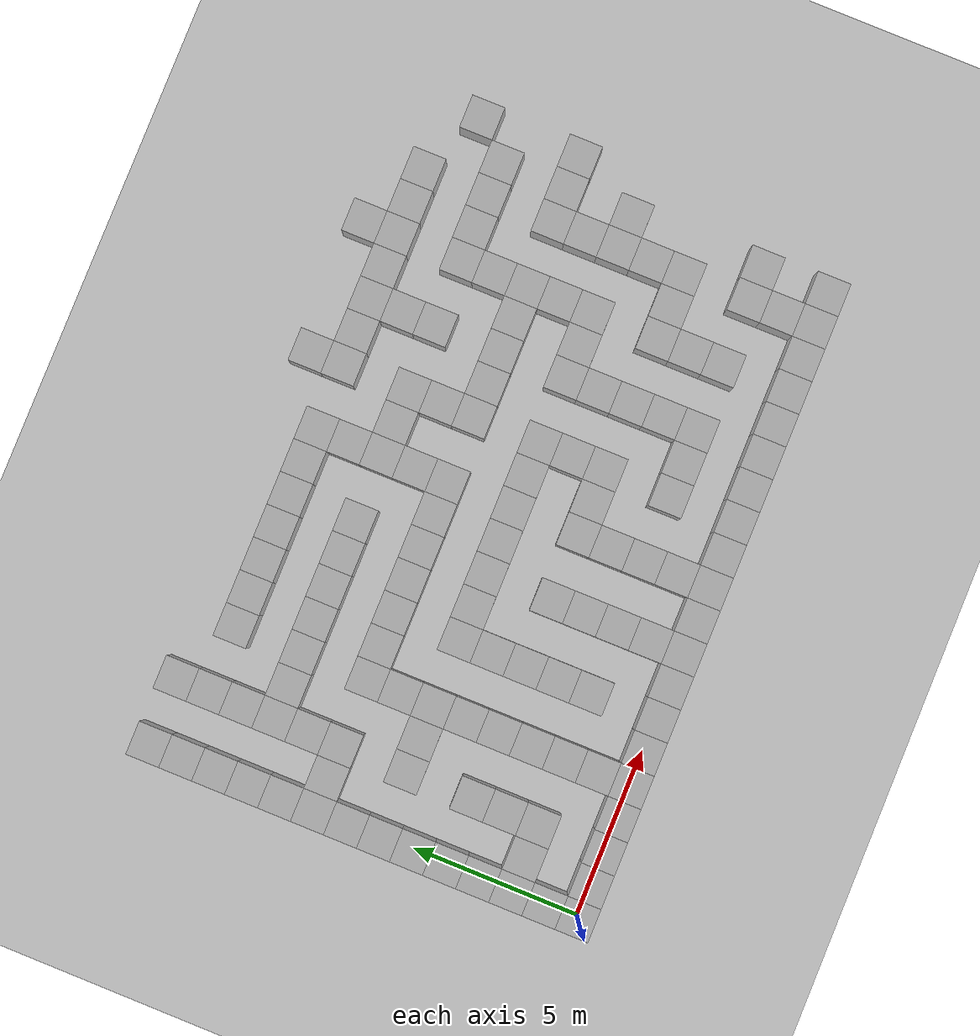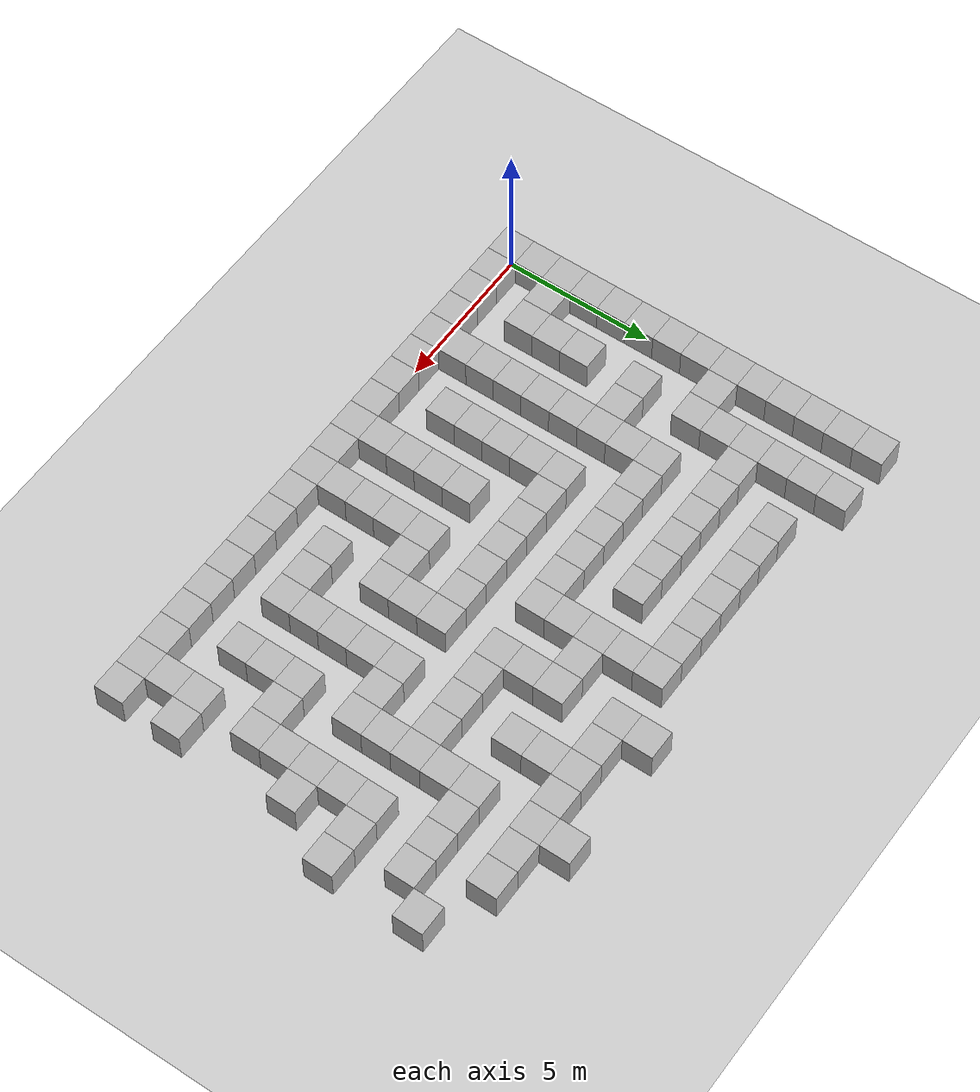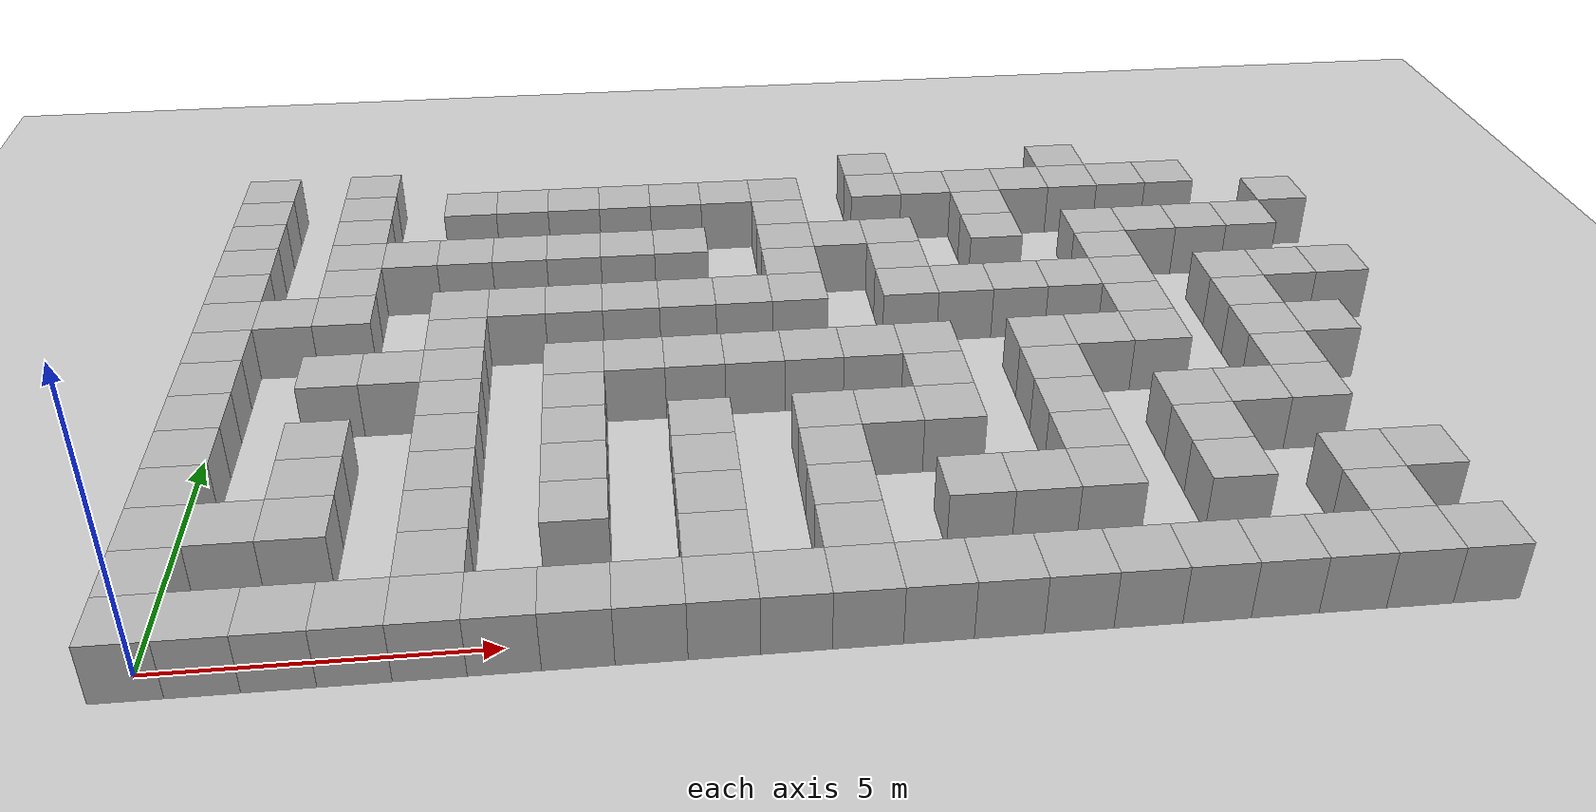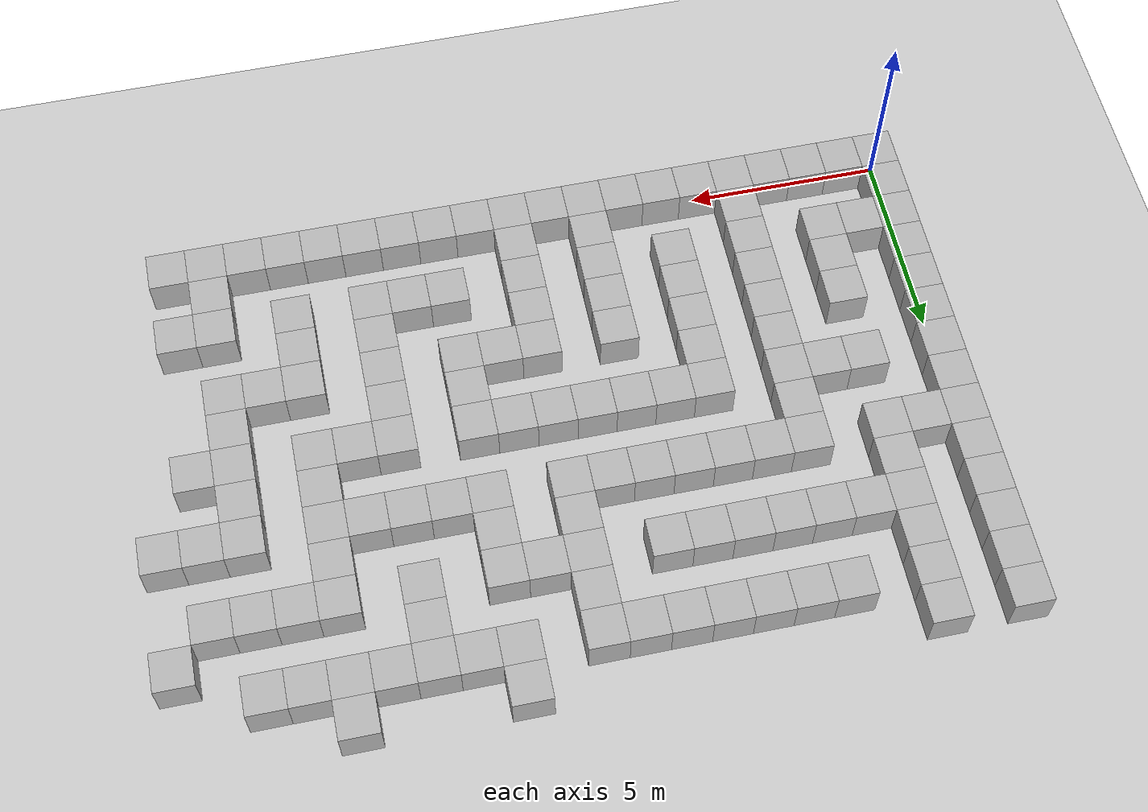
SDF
<sdf version="1.8">
 <world name="custom_maze">
  <model name="ground_plane">
   <static>1</static>
   <link name="link">
    <collision name="collision">
     <geometry><plane><normal>0 0 1</normal><size>100 100</size></plane></geometry>
    </collision>
    <visual name="visual">
     <geometry><plane><normal>0 0 1</normal><size>100 100</size></plane></geometry>
     <material>
      <ambient>0.8 0.8 0.8 1</ambient>
      <diffuse>0.8 0.8 0.8 1</diffuse>
      <specular>0.8 0.8 0.8 1</specular>
     </material>
     <plugin name="__default__" filename="__default__"/>
    </visual>
   </link>
   <plugin name="__default__" filename="__default__"/>
  </model>
  <model name="border"><pose>0 0 1 0 0 0</pose><static>true</static></model>
  <model name="obstacles">
   <pose>0 0 0.5 0 0 0</pose>
   <static>true</static>
   <link name="wall3">
    <pose>0 5 0 0 0 0</pose>
    <static>true</static>
    <collision name="wall3_collision"><geometry><box><size>1 1 1</size></box></geometry></collision>
    <visual name="wall3_visual"><geometry><box><size>1 1 1</size></box></geometry></visual>
   </link>
   <link name="wall20">
    <pose>18 7 0 0 0 0</pose>
    <static>true</static>
    <collision name="wall20_collision"><geometry><box><size>1 1 1</size></box></geometry></collision>
    <visual name="wall20_visual"><geometry><box><size>1 1 1</size></box></geometry></visual>
   </link>
   <link name="wall25">
    <pose>11 4 0 0 0 0</pose>
    <static>true</static>
    <collision name="wall25_collision"><geometry><box><size>1 1 1</size></box></geometry></collision>
    <visual name="wall25_visual"><geometry><box><size>1 1 1</size></box></geometry></visual>
   </link>
   <link name="wall26">
    <pose>10 8 0 0 0 0</pose>
    <static>true</static>
    <collision name="wall26_collision"><geometry><box><size>1 1 1</size></box></geometry></collision>
    <visual name="wall26_visual"><geometry><box><size>1 1 1</size></box></geometry></visual>
   </link>
   <link name="wall49">
    <pose>14 4 0 0 0 0</pose>
    <static>true</static>
    <collision name="wall49_collision"><geometry><box><size>1 1 1</size></box></geometry></collision>
    <visual name="wall49_visual"><geometry><box><size>1 1 1</size></box></geometry></visual>
   </link>
   <link name="wall53">
    <pose>6 5 0 0 0 0</pose>
    <static>true</static>
    <collision name="wall53_collision"><geometry><box><size>1 1 1</size></box></geometry></collision>
    <visual name="wall53_visual"><geometry><box><size>1 1 1</size></box></geometry></visual>
   </link>
   <link name="wall55">
    <pose>10 11 0 0 0 0</pose>
    <static>true</static>
    <collision name="wall55_collision"><geometry><box><size>1 1 1</size></box></geometry></collision>
    <visual name="wall55_visual"><geometry><box><size>1 1 1</size></box></geometry></visual>
   </link>
   <link name="wall75">
    <pose>13 12 0 0 0 0</pose>
    <static>true</static>
    <collision name="wall75_collision"><geometry><box><size>1 1 1</size></box></geometry></collision>
    <visual name="wall75_visual"><geometry><box><size>1 1 1</size></box></geometry></visual>
   </link>
   <link name="wall90">
    <pose>13 2 0 0 0 0</pose>
    <static>true</static>
    <collision name="wall90_collision"><geometry><box><size>1 1 1</size></box></geometry></collision>
    <visual name="wall90_visual"><geometry><box><size>1 1 1</size></box></geometry></visual>
   </link>
   <link name="wall93">
    <pose>16 7 0 0 0 0</pose>
    <static>true</static>
    <collision name="wall93_collision"><geometry><box><size>1 1 1</size></box></geometry></collision>
    <visual name="wall93_visual"><geometry><box><size>1 1 1</size></box></geometry></visual>
   </link>
   <link name="wall95">
    <pose>8 8 0 0 0 0</pose>
    <static>true</static>
    <collision name="wall95_collision"><geometry><box><size>1 1 1</size></box></geometry></collision>
    <visual name="wall95_visual"><geometry><box><size>1 1 1</size></box></geometry></visual>
   </link>
   <link name="wall96">
    <pose>0 4 0 0 0 0</pose>
    <static>true</static>
    <collision name="wall96_collision"><geometry><box><size>1 1 1</size></box></geometry></collision>
    <visual name="wall96_visual"><geometry><box><size>1 1 1</size></box></geometry></visual>
   </link>
   <link name="wall101">
    <pose>4 10 0 0 0 0</pose>
    <static>true</static>
    <collision name="wall101_collision"><geometry><box><size>1 1 1</size></box></geometry></collision>
    <visual name="wall101_visual"><geometry><box><size>1 1 1</size></box></geometry></visual>
   </link>
   <link name="wall113">
    <pose>18 6 0 0 0 0</pose>
    <static>true</static>
    <collision name="wall113_collision"><geometry><box><size>1 1 1</size></box></geometry></collision>
    <visual name="wall113_visual"><geometry><box><size>1 1 1</size></box></geometry></visual>
   </link>
   <link name="wall116">
    <pose>12 4 0 0 0 0</pose>
    <static>true</static>
    <collision name="wall116_collision"><geometry><box><size>1 1 1</size></box></geometry></collision>
    <visual name="wall116_visual"><geometry><box><size>1 1 1</size></box></geometry></visual>
   </link>
   <link name="wall117">
    <pose>4 0 0 0 0 0</pose>
    <static>true</static>
    <collision name="wall117_collision"><geometry><box><size>1 1 1</size></box></geometry></collision>
    <visual name="wall117_visual"><geometry><box><size>1 1 1</size></box></geometry></visual>
   </link>
   <link name="wall120">
    <pose>7 10 0 0 0 0</pose>
    <static>true</static>
    <collision name="wall120_collision"><geometry><box><size>1 1 1</size></box></geometry></collision>
    <visual name="wall120_visual"><geometry><box><size>1 1 1</size></box></geometry></visual>
   </link>
   <link name="wall121">
    <pose>0 7 0 0 0 0</pose>
    <static>true</static>
    <collision name="wall121_collision"><geometry><box><size>1 1 1</size></box></geometry></collision>
    <visual name="wall121_visual"><geometry><box><size>1 1 1</size></box></geometry></visual>
   </link>
   <link name="wall135">
    <pose>14 3 0 0 0 0</pose>
    <static>true</static>
    <collision name="wall135_collision"><geometry><box><size>1 1 1</size></box></geometry></collision>
    <visual name="wall135_visual"><geometry><box><size>1 1 1</size></box></geometry></visual>
   </link>
   <link name="wall139">
    <pose>7 0 0 0 0 0</pose>
    <static>true</static>
    <collision name="wall139_collision"><geometry><box><size>1 1 1</size></box></geometry></collision>
    <visual name="wall139_visual"><geometry><box><size>1 1 1</size></box></geometry></visual>
   </link>
   <link name="wall142">
    <pose>10 10 0 0 0 0</pose>
    <static>true</static>
    <collision name="wall142_collision"><geometry><box><size>1 1 1</size></box></geometry></collision>
    <visual name="wall142_visual"><geometry><box><size>1 1 1</size></box></geometry></visual>
   </link>
   <link name="wall143">
    <pose>2 6 0 0 0 0</pose>
    <static>true</static>
    <collision name="wall143_collision"><geometry><box><size>1 1 1</size></box></geometry></collision>
    <visual name="wall143_visual"><geometry><box><size>1 1 1</size></box></geometry></visual>
   </link>
   <link name="wall159">
    <pose>10 0 0 0 0 0</pose>
    <static>true</static>
    <collision name="wall159_collision"><geometry><box><size>1 1 1</size></box></geometry></collision>
    <visual name="wall159_visual"><geometry><box><size>1 1 1</size></box></geometry></visual>
   </link>
   <link name="wall162">
    <pose>14 6 0 0 0 0</pose>
    <static>true</static>
    <collision name="wall162_collision"><geometry><box><size>1 1 1</size></box></geometry></collision>
    <visual name="wall162_visual"><geometry><box><size>1 1 1</size></box></geometry></visual>
   </link>
   <link name="wall169">
    <pose>2 9 0 0 0 0</pose>
    <static>true</static>
    <collision name="wall169_collision"><geometry><box><size>1 1 1</size></box></geometry></collision>
    <visual name="wall169_visual"><geometry><box><size>1 1 1</size></box></geometry></visual>
   </link>
   <link name="wall182">
    <pose>16 6 0 0 0 0</pose>
    <static>true</static>
    <collision name="wall182_collision"><geometry><box><size>1 1 1</size></box></geometry></collision>
    <visual name="wall182_visual"><geometry><box><size>1 1 1</size></box></geometry></visual>
   </link>
   <link name="wall186">
    <pose>12 13 0 0 0 0</pose>
    <static>true</static>
    <collision name="wall186_collision"><geometry><box><size>1 1 1</size></box></geometry></collision>
    <visual name="wall186_visual"><geometry><box><size>1 1 1</size></box></geometry></visual>
   </link>
   <link name="wall204">
    <pose>16 9 0 0 0 0</pose>
    <static>true</static>
    <collision name="wall204_collision"><geometry><box><size>1 1 1</size></box></geometry></collision>
    <visual name="wall204_visual"><geometry><box><size>1 1 1</size></box></geometry></visual>
   </link>
   <link name="wall206">
    <pose>8 10 0 0 0 0</pose>
    <static>true</static>
    <collision name="wall206_collision"><geometry><box><size>1 1 1</size></box></geometry></collision>
    <visual name="wall206_visual"><geometry><box><size>1 1 1</size></box></geometry></visual>
   </link>
   <link name="wall207">
    <pose>0 6 0 0 0 0</pose>
    <static>true</static>
    <collision name="wall207_collision"><geometry><box><size>1 1 1</size></box></geometry></collision>
    <visual name="wall207_visual"><geometry><box><size>1 1 1</size></box></geometry></visual>
   </link>
   <link name="wall210">
    <pose>4 12 0 0 0 0</pose>
    <static>true</static>
    <collision name="wall210_collision"><geometry><box><size>1 1 1</size></box></geometry></collision>
    <visual name="wall210_visual"><geometry><box><size>1 1 1</size></box></geometry></visual>
   </link>
   <link name="wall221">
    <pose>18 8 0 0 0 0</pose>
    <static>true</static>
    <collision name="wall221_collision"><geometry><box><size>1 1 1</size></box></geometry></collision>
    <visual name="wall221_visual"><geometry><box><size>1 1 1</size></box></geometry></visual>
   </link>
   <link name="wall223">
    <pose>8 0 0 0 0 0</pose>
    <static>true</static>
    <collision name="wall223_collision"><geometry><box><size>1 1 1</size></box></geometry></collision>
    <visual name="wall223_visual"><geometry><box><size>1 1 1</size></box></geometry></visual>
   </link>
   <link name="wall225">
    <pose>4 2 0 0 0 0</pose>
    <static>true</static>
    <collision name="wall225_collision"><geometry><box><size>1 1 1</size></box></geometry></collision>
    <visual name="wall225_visual"><geometry><box><size>1 1 1</size></box></geometry></visual>
   </link>
   <link name="wall226">
    <pose>3 6 0 0 0 0</pose>
    <static>true</static>
    <collision name="wall226_collision"><geometry><box><size>1 1 1</size></box></geometry></collision>
    <visual name="wall226_visual"><geometry><box><size>1 1 1</size></box></geometry></visual>
   </link>
   <link name="wall231">
    <pose>7 12 0 0 0 0</pose>
    <static>true</static>
    <collision name="wall231_collision"><geometry><box><size>1 1 1</size></box></geometry></collision>
    <visual name="wall231_visual"><geometry><box><size>1 1 1</size></box></geometry></visual>
   </link>
   <link name="wall233">
    <pose>0 9 0 0 0 0</pose>
    <static>true</static>
    <collision name="wall233_collision"><geometry><box><size>1 1 1</size></box></geometry></collision>
    <visual name="wall233_visual"><geometry><box><size>1 1 1</size></box></geometry></visual>
   </link>
   <link name="wall245">
    <pose>14 5 0 0 0 0</pose>
    <static>true</static>
    <collision name="wall245_collision"><geometry><box><size>1 1 1</size></box></geometry></collision>
    <visual name="wall245_visual"><geometry><box><size>1 1 1</size></box></geometry></visual>
   </link>
   <link name="wall246">
    <pose>15 6 0 0 0 0</pose>
    <static>true</static>
    <collision name="wall246_collision"><geometry><box><size>1 1 1</size></box></geometry></collision>
    <visual name="wall246_visual"><geometry><box><size>1 1 1</size></box></geometry></visual>
   </link>
   <link name="wall250">
    <pose>10 12 0 0 0 0</pose>
    <static>true</static>
    <collision name="wall250_collision"><geometry><box><size>1 1 1</size></box></geometry></collision>
    <visual name="wall250_visual"><geometry><box><size>1 1 1</size></box></geometry></visual>
   </link>
   <link name="wall251">
    <pose>2 8 0 0 0 0</pose>
    <static>true</static>
    <collision name="wall251_collision"><geometry><box><size>1 1 1</size></box></geometry></collision>
    <visual name="wall251_visual"><geometry><box><size>1 1 1</size></box></geometry></visual>
   </link>
   <link name="wall266">
    <pose>10 2 0 0 0 0</pose>
    <static>true</static>
    <collision name="wall266_collision"><geometry><box><size>1 1 1</size></box></geometry></collision>
    <visual name="wall266_visual"><geometry><box><size>1 1 1</size></box></geometry></visual>
   </link>
   <link name="wall271">
    <pose>5 8 0 0 0 0</pose>
    <static>true</static>
    <collision name="wall271_collision"><geometry><box><size>1 1 1</size></box></geometry></collision>
    <visual name="wall271_visual"><geometry><box><size>1 1 1</size></box></geometry></visual>
   </link>
   <link name="wall279">
    <pose>2 11 0 0 0 0</pose>
    <static>true</static>
    <collision name="wall279_collision"><geometry><box><size>1 1 1</size></box></geometry></collision>
    <visual name="wall279_visual"><geometry><box><size>1 1 1</size></box></geometry></visual>
   </link>
   <link name="wall289">
    <pose>16 8 0 0 0 0</pose>
    <static>true</static>
    <collision name="wall289_collision"><geometry><box><size>1 1 1</size></box></geometry></collision>
    <visual name="wall289_visual"><geometry><box><size>1 1 1</size></box></geometry></visual>
   </link>
   <link name="wall309">
    <pose>19 8 0 0 0 0</pose>
    <static>true</static>
    <collision name="wall309_collision"><geometry><box><size>1 1 1</size></box></geometry></collision>
    <visual name="wall309_visual"><geometry><box><size>1 1 1</size></box></geometry></visual>
   </link>
   <link name="wall312">
    <pose>12 5 0 0 0 0</pose>
    <static>true</static>
    <collision name="wall312_collision"><geometry><box><size>1 1 1</size></box></geometry></collision>
    <visual name="wall312_visual"><geometry><box><size>1 1 1</size></box></geometry></visual>
   </link>
   <link name="wall313">
    <pose>4 1 0 0 0 0</pose>
    <static>true</static>
    <collision name="wall313_collision"><geometry><box><size>1 1 1</size></box></geometry></collision>
    <visual name="wall313_visual"><geometry><box><size>1 1 1</size></box></geometry></visual>
   </link>
   <link name="wall317">
    <pose>8 12 0 0 0 0</pose>
    <static>true</static>
    <collision name="wall317_collision"><geometry><box><size>1 1 1</size></box></geometry></collision>
    <visual name="wall317_visual"><geometry><box><size>1 1 1</size></box></geometry></visual>
   </link>
   <link name="wall318">
    <pose>0 8 0 0 0 0</pose>
    <static>true</static>
    <collision name="wall318_collision"><geometry><box><size>1 1 1</size></box></geometry></collision>
    <visual name="wall318_visual"><geometry><box><size>1 1 1</size></box></geometry></visual>
   </link>
   <link name="wall333">
    <pose>18 10 0 0 0 0</pose>
    <static>true</static>
    <collision name="wall333_collision"><geometry><box><size>1 1 1</size></box></geometry></collision>
    <visual name="wall333_visual"><geometry><box><size>1 1 1</size></box></geometry></visual>
   </link>
   <link name="wall334">
    <pose>8 2 0 0 0 0</pose>
    <static>true</static>
    <collision name="wall334_collision"><geometry><box><size>1 1 1</size></box></geometry></collision>
    <visual name="wall334_visual"><geometry><box><size>1 1 1</size></box></geometry></visual>
   </link>
   <link name="wall349">
    <pose>18 0 0 0 0 0</pose>
    <static>true</static>
    <collision name="wall349_collision"><geometry><box><size>1 1 1</size></box></geometry></collision>
    <visual name="wall349_visual"><geometry><box><size>1 1 1</size></box></geometry></visual>
   </link>
   <link name="wall352">
    <pose>10 1 0 0 0 0</pose>
    <static>true</static>
    <collision name="wall352_collision"><geometry><box><size>1 1 1</size></box></geometry></collision>
    <visual name="wall352_visual"><geometry><box><size>1 1 1</size></box></geometry></visual>
   </link>
   <link name="wall357">
    <pose>6 8 0 0 0 0</pose>
    <static>true</static>
    <collision name="wall357_collision"><geometry><box><size>1 1 1</size></box></geometry></collision>
    <visual name="wall357_visual"><geometry><box><size>1 1 1</size></box></geometry></visual>
   </link>
   <link name="wall362">
    <pose>2 10 0 0 0 0</pose>
    <static>true</static>
    <collision name="wall362_collision"><geometry><box><size>1 1 1</size></box></geometry></collision>
    <visual name="wall362_visual"><geometry><box><size>1 1 1</size></box></geometry></visual>
   </link>
   <link name="wall374">
    <pose>10 4 0 0 0 0</pose>
    <static>true</static>
    <collision name="wall374_collision"><geometry><box><size>1 1 1</size></box></geometry></collision>
    <visual name="wall374_visual"><geometry><box><size>1 1 1</size></box></geometry></visual>
   </link>
   <link name="wall375">
    <pose>2 0 0 0 0 0</pose>
    <static>true</static>
    <collision name="wall375_collision"><geometry><box><size>1 1 1</size></box></geometry></collision>
    <visual name="wall375_visual"><geometry><box><size>1 1 1</size></box></geometry></visual>
   </link>
   <link name="wall380">
    <pose>5 10 0 0 0 0</pose>
    <static>true</static>
    <collision name="wall380_collision"><geometry><box><size>1 1 1</size></box></geometry></collision>
    <visual name="wall380_visual"><geometry><box><size>1 1 1</size></box></geometry></visual>
   </link>
   <link name="wall391">
    <pose>20 8 0 0 0 0</pose>
    <static>true</static>
    <collision name="wall391_collision"><geometry><box><size>1 1 1</size></box></geometry></collision>
    <visual name="wall391_visual"><geometry><box><size>1 1 1</size></box></geometry></visual>
   </link>
   <link name="wall396">
    <pose>16 10 0 0 0 0</pose>
    <static>true</static>
    <collision name="wall396_collision"><geometry><box><size>1 1 1</size></box></geometry></collision>
    <visual name="wall396_visual"><geometry><box><size>1 1 1</size></box></geometry></visual>
   </link>
   <link name="wall397">
    <pose>5 0 0 0 0 0</pose>
    <static>true</static>
    <collision name="wall397_collision"><geometry><box><size>1 1 1</size></box></geometry></collision>
    <visual name="wall397_visual"><geometry><box><size>1 1 1</size></box></geometry></visual>
   </link>
   <link name="wall415">
    <pose>16 0 0 0 0 0</pose>
    <static>true</static>
    <collision name="wall415_collision"><geometry><box><size>1 1 1</size></box></geometry></collision>
    <visual name="wall415_visual"><geometry><box><size>1 1 1</size></box></geometry></visual>
   </link>
   <link name="wall419">
    <pose>8 1 0 0 0 0</pose>
    <static>true</static>
    <collision name="wall419_collision"><geometry><box><size>1 1 1</size></box></geometry></collision>
    <visual name="wall419_visual"><geometry><box><size>1 1 1</size></box></geometry></visual>
   </link>
   <link name="wall421">
    <pose>19 10 0 0 0 0</pose>
    <static>true</static>
    <collision name="wall421_collision"><geometry><box><size>1 1 1</size></box></geometry></collision>
    <visual name="wall421_visual"><geometry><box><size>1 1 1</size></box></geometry></visual>
   </link>
   <link name="wall422">
    <pose>11 6 0 0 0 0</pose>
    <static>true</static>
    <collision name="wall422_collision"><geometry><box><size>1 1 1</size></box></geometry></collision>
    <visual name="wall422_visual"><geometry><box><size>1 1 1</size></box></geometry></visual>
   </link>
   <link name="wall425">
    <pose>20 11 0 0 0 0</pose>
    <static>true</static>
    <collision name="wall425_collision"><geometry><box><size>1 1 1</size></box></geometry></collision>
    <visual name="wall425_visual"><geometry><box><size>1 1 1</size></box></geometry></visual>
   </link>
   <link name="wall427">
    <pose>4 3 0 0 0 0</pose>
    <static>true</static>
    <collision name="wall427_collision"><geometry><box><size>1 1 1</size></box></geometry></collision>
    <visual name="wall427_visual"><geometry><box><size>1 1 1</size></box></geometry></visual>
   </link>
   <link name="wall434">
    <pose>0 10 0 0 0 0</pose>
    <static>true</static>
    <collision name="wall434_collision"><geometry><box><size>1 1 1</size></box></geometry></collision>
    <visual name="wall434_visual"><geometry><box><size>1 1 1</size></box></geometry></visual>
   </link>
   <link name="wall442">
    <pose>19 0 0 0 0 0</pose>
    <static>true</static>
    <collision name="wall442_collision"><geometry><box><size>1 1 1</size></box></geometry></collision>
    <visual name="wall442_visual"><geometry><box><size>1 1 1</size></box></geometry></visual>
   </link>
   <link name="wall449">
    <pose>18 12 0 0 0 0</pose>
    <static>true</static>
    <collision name="wall449_collision"><geometry><box><size>1 1 1</size></box></geometry></collision>
    <visual name="wall449_visual"><geometry><box><size>1 1 1</size></box></geometry></visual>
   </link>
   <link name="wall450">
    <pose>8 4 0 0 0 0</pose>
    <static>true</static>
    <collision name="wall450_collision"><geometry><box><size>1 1 1</size></box></geometry></collision>
    <visual name="wall450_visual"><geometry><box><size>1 1 1</size></box></geometry></visual>
   </link>
   <link name="wall451">
    <static>true</static>
    <collision name="wall451_collision"><geometry><box><size>1 1 1</size></box></geometry></collision>
    <visual name="wall451_visual"><geometry><box><size>1 1 1</size></box></geometry></visual>
   </link>
   <link name="wall453">
    <pose>3 10 0 0 0 0</pose>
    <static>true</static>
    <collision name="wall453_collision"><geometry><box><size>1 1 1</size></box></geometry></collision>
    <visual name="wall453_visual"><geometry><box><size>1 1 1</size></box></geometry></visual>
   </link>
   <link name="wall465">
    <pose>18 2 0 0 0 0</pose>
    <static>true</static>
    <collision name="wall465_collision"><geometry><box><size>1 1 1</size></box></geometry></collision>
    <visual name="wall465_visual"><geometry><box><size>1 1 1</size></box></geometry></visual>
   </link>
   <link name="wall467">
    <pose>10 3 0 0 0 0</pose>
    <static>true</static>
    <collision name="wall467_collision"><geometry><box><size>1 1 1</size></box></geometry></collision>
    <visual name="wall467_visual"><geometry><box><size>1 1 1</size></box></geometry></visual>
   </link>
   <link name="wall469">
    <pose>3 0 0 0 0 0</pose>
    <static>true</static>
    <collision name="wall469_collision"><geometry><box><size>1 1 1</size></box></geometry></collision>
    <visual name="wall469_visual"><geometry><box><size>1 1 1</size></box></geometry></visual>
   </link>
   <link name="wall474">
    <pose>6 10 0 0 0 0</pose>
    <static>true</static>
    <collision name="wall474_collision"><geometry><box><size>1 1 1</size></box></geometry></collision>
    <visual name="wall474_visual"><geometry><box><size>1 1 1</size></box></geometry></visual>
   </link>
   <link name="wall478">
    <pose>2 12 0 0 0 0</pose>
    <static>true</static>
    <collision name="wall478_collision"><geometry><box><size>1 1 1</size></box></geometry></collision>
    <visual name="wall478_visual"><geometry><box><size>1 1 1</size></box></geometry></visual>
   </link>
   <link name="wall488">
    <pose>17 10 0 0 0 0</pose>
    <static>true</static>
    <collision name="wall488_collision"><geometry><box><size>1 1 1</size></box></geometry></collision>
    <visual name="wall488_visual"><geometry><box><size>1 1 1</size></box></geometry></visual>
   </link>
   <link name="wall490">
    <pose>9 6 0 0 0 0</pose>
    <static>true</static>
    <collision name="wall490_collision"><geometry><box><size>1 1 1</size></box></geometry></collision>
    <visual name="wall490_visual"><geometry><box><size>1 1 1</size></box></geometry></visual>
   </link>
   <link name="wall492">
    <pose>6 0 0 0 0 0</pose>
    <static>true</static>
    <collision name="wall492_collision"><geometry><box><size>1 1 1</size></box></geometry></collision>
    <visual name="wall492_visual"><geometry><box><size>1 1 1</size></box></geometry></visual>
   </link>
   <link name="wall495">
    <pose>10 6 0 0 0 0</pose>
    <static>true</static>
    <collision name="wall495_collision"><geometry><box><size>1 1 1</size></box></geometry></collision>
    <visual name="wall495_visual"><geometry><box><size>1 1 1</size></box></geometry></visual>
   </link>
   <link name="wall496">
    <pose>2 2 0 0 0 0</pose>
    <static>true</static>
    <collision name="wall496_collision"><geometry><box><size>1 1 1</size></box></geometry></collision>
    <visual name="wall496_visual"><geometry><box><size>1 1 1</size></box></geometry></visual>
   </link>
   <link name="wall501">
    <pose>5 12 0 0 0 0</pose>
    <static>true</static>
    <collision name="wall501_collision"><geometry><box><size>1 1 1</size></box></geometry></collision>
    <visual name="wall501_visual"><geometry><box><size>1 1 1</size></box></geometry></visual>
   </link>
   <link name="wall510">
    <pose>17 0 0 0 0 0</pose>
    <static>true</static>
    <collision name="wall510_collision"><geometry><box><size>1 1 1</size></box></geometry></collision>
    <visual name="wall510_visual"><geometry><box><size>1 1 1</size></box></geometry></visual>
   </link>
   <link name="wall516">
    <pose>12 6 0 0 0 0</pose>
    <static>true</static>
    <collision name="wall516_collision"><geometry><box><size>1 1 1</size></box></geometry></collision>
    <visual name="wall516_visual"><geometry><box><size>1 1 1</size></box></geometry></visual>
   </link>
   <link name="wall520">
    <pose>16 12 0 0 0 0</pose>
    <static>true</static>
    <collision name="wall520_collision"><geometry><box><size>1 1 1</size></box></geometry></collision>
    <visual name="wall520_visual"><geometry><box><size>1 1 1</size></box></geometry></visual>
   </link>
   <link name="wall534">
    <pose>16 2 0 0 0 0</pose>
    <static>true</static>
    <collision name="wall534_collision"><geometry><box><size>1 1 1</size></box></geometry></collision>
    <visual name="wall534_visual"><geometry><box><size>1 1 1</size></box></geometry></visual>
   </link>
   <link name="wall538">
    <pose>8 3 0 0 0 0</pose>
    <static>true</static>
    <collision name="wall538_collision"><geometry><box><size>1 1 1</size></box></geometry></collision>
    <visual name="wall538_visual"><geometry><box><size>1 1 1</size></box></geometry></visual>
   </link>
   <link name="wall543">
    <pose>12 9 0 0 0 0</pose>
    <static>true</static>
    <collision name="wall543_collision"><geometry><box><size>1 1 1</size></box></geometry></collision>
    <visual name="wall543_visual"><geometry><box><size>1 1 1</size></box></geometry></visual>
   </link>
   <link name="wall544">
    <pose>4 5 0 0 0 0</pose>
    <static>true</static>
    <collision name="wall544_collision"><geometry><box><size>1 1 1</size></box></geometry></collision>
    <visual name="wall544_visual"><geometry><box><size>1 1 1</size></box></geometry></visual>
   </link>
   <link name="wall551">
    <pose>0 12 0 0 0 0</pose>
    <static>true</static>
    <collision name="wall551_collision"><geometry><box><size>1 1 1</size></box></geometry></collision>
    <visual name="wall551_visual"><geometry><box><size>1 1 1</size></box></geometry></visual>
   </link>
   <link name="wall554">
    <pose>18 1 0 0 0 0</pose>
    <static>true</static>
    <collision name="wall554_collision"><geometry><box><size>1 1 1</size></box></geometry></collision>
    <visual name="wall554_visual"><geometry><box><size>1 1 1</size></box></geometry></visual>
   </link>
   <link name="wall558">
    <pose>19 2 0 0 0 0</pose>
    <static>true</static>
    <collision name="wall558_collision"><geometry><box><size>1 1 1</size></box></geometry></collision>
    <visual name="wall558_visual"><geometry><box><size>1 1 1</size></box></geometry></visual>
   </link>
   <link name="wall564">
    <pose>14 8 0 0 0 0</pose>
    <static>true</static>
    <collision name="wall564_collision"><geometry><box><size>1 1 1</size></box></geometry></collision>
    <visual name="wall564_visual"><geometry><box><size>1 1 1</size></box></geometry></visual>
   </link>
   <link name="wall568">
    <pose>0 2 0 0 0 0</pose>
    <static>true</static>
    <collision name="wall568_collision"><geometry><box><size>1 1 1</size></box></geometry></collision>
    <visual name="wall568_visual"><geometry><box><size>1 1 1</size></box></geometry></visual>
   </link>
   <link name="wall579">
    <pose>18 4 0 0 0 0</pose>
    <static>true</static>
    <collision name="wall579_collision"><geometry><box><size>1 1 1</size></box></geometry></collision>
    <visual name="wall579_visual"><geometry><box><size>1 1 1</size></box></geometry></visual>
   </link>
   <link name="wall584">
    <pose>14 11 0 0 0 0</pose>
    <static>true</static>
    <collision name="wall584_collision"><geometry><box><size>1 1 1</size></box></geometry></collision>
    <visual name="wall584_visual"><geometry><box><size>1 1 1</size></box></geometry></visual>
   </link>
   <link name="wall587">
    <pose>6 12 0 0 0 0</pose>
    <static>true</static>
    <collision name="wall587_collision"><geometry><box><size>1 1 1</size></box></geometry></collision>
    <visual name="wall587_visual"><geometry><box><size>1 1 1</size></box></geometry></visual>
   </link>
   <link name="wall600">
    <pose>17 12 0 0 0 0</pose>
    <static>true</static>
    <collision name="wall600_collision"><geometry><box><size>1 1 1</size></box></geometry></collision>
    <visual name="wall600_visual"><geometry><box><size>1 1 1</size></box></geometry></visual>
   </link>
   <link name="wall601">
    <pose>9 8 0 0 0 0</pose>
    <static>true</static>
    <collision name="wall601_collision"><geometry><box><size>1 1 1</size></box></geometry></collision>
    <visual name="wall601_visual"><geometry><box><size>1 1 1</size></box></geometry></visual>
   </link>
   <link name="wall602">
    <pose>6 2 0 0 0 0</pose>
    <static>true</static>
    <collision name="wall602_collision"><geometry><box><size>1 1 1</size></box></geometry></collision>
    <visual name="wall602_visual"><geometry><box><size>1 1 1</size></box></geometry></visual>
   </link>
   <link name="wall605">
    <pose>2 4 0 0 0 0</pose>
    <static>true</static>
    <collision name="wall605_collision"><geometry><box><size>1 1 1</size></box></geometry></collision>
    <visual name="wall605_visual"><geometry><box><size>1 1 1</size></box></geometry></visual>
   </link>
   <link name="wall606">
    <pose>1 8 0 0 0 0</pose>
    <static>true</static>
    <collision name="wall606_collision"><geometry><box><size>1 1 1</size></box></geometry></collision>
    <visual name="wall606_visual"><geometry><box><size>1 1 1</size></box></geometry></visual>
   </link>
   <link name="wall623">
    <pose>12 8 0 0 0 0</pose>
    <static>true</static>
    <collision name="wall623_collision"><geometry><box><size>1 1 1</size></box></geometry></collision>
    <visual name="wall623_visual"><geometry><box><size>1 1 1</size></box></geometry></visual>
   </link>
   <link name="wall624">
    <pose>4 4 0 0 0 0</pose>
    <static>true</static>
    <collision name="wall624_collision"><geometry><box><size>1 1 1</size></box></geometry></collision>
    <visual name="wall624_visual"><geometry><box><size>1 1 1</size></box></geometry></visual>
   </link>
   <link name="wall631">
    <pose>0 11 0 0 0 0</pose>
    <static>true</static>
    <collision name="wall631_collision"><geometry><box><size>1 1 1</size></box></geometry></collision>
    <visual name="wall631_visual"><geometry><box><size>1 1 1</size></box></geometry></visual>
   </link>
   <link name="wall644">
    <pose>16 4 0 0 0 0</pose>
    <static>true</static>
    <collision name="wall644_collision"><geometry><box><size>1 1 1</size></box></geometry></collision>
    <visual name="wall644_visual"><geometry><box><size>1 1 1</size></box></geometry></visual>
   </link>
   <link name="wall645">
    <pose>15 8 0 0 0 0</pose>
    <static>true</static>
    <collision name="wall645_collision"><geometry><box><size>1 1 1</size></box></geometry></collision>
    <visual name="wall645_visual"><geometry><box><size>1 1 1</size></box></geometry></visual>
   </link>
   <link name="wall650">
    <pose>0 1 0 0 0 0</pose>
    <static>true</static>
    <collision name="wall650_collision"><geometry><box><size>1 1 1</size></box></geometry></collision>
    <visual name="wall650_visual"><geometry><box><size>1 1 1</size></box></geometry></visual>
   </link>
   <link name="wall651">
    <pose>11 10 0 0 0 0</pose>
    <static>true</static>
    <collision name="wall651_collision"><geometry><box><size>1 1 1</size></box></geometry></collision>
    <visual name="wall651_visual"><geometry><box><size>1 1 1</size></box></geometry></visual>
   </link>
   <link name="wall654">
    <pose>4 7 0 0 0 0</pose>
    <static>true</static>
    <collision name="wall654_collision"><geometry><box><size>1 1 1</size></box></geometry></collision>
    <visual name="wall654_visual"><geometry><box><size>1 1 1</size></box></geometry></visual>
   </link>
   <link name="wall672">
    <pose>11 0 0 0 0 0</pose>
    <static>true</static>
    <collision name="wall672_collision"><geometry><box><size>1 1 1</size></box></geometry></collision>
    <visual name="wall672_visual"><geometry><box><size>1 1 1</size></box></geometry></visual>
   </link>
   <link name="wall678">
    <pose>14 10 0 0 0 0</pose>
    <static>true</static>
    <collision name="wall678_collision"><geometry><box><size>1 1 1</size></box></geometry></collision>
    <visual name="wall678_visual"><geometry><box><size>1 1 1</size></box></geometry></visual>
   </link>
   <link name="wall685">
    <pose>2 13 0 0 0 0</pose>
    <static>true</static>
    <collision name="wall685_collision"><geometry><box><size>1 1 1</size></box></geometry></collision>
    <visual name="wall685_visual"><geometry><box><size>1 1 1</size></box></geometry></visual>
   </link>
   <link name="wall697">
    <pose>14 0 0 0 0 0</pose>
    <static>true</static>
    <collision name="wall697_collision"><geometry><box><size>1 1 1</size></box></geometry></collision>
    <visual name="wall697_visual"><geometry><box><size>1 1 1</size></box></geometry></visual>
   </link>
   <link name="wall702">
    <pose>2 3 0 0 0 0</pose>
    <static>true</static>
    <collision name="wall702_collision"><geometry><box><size>1 1 1</size></box></geometry></collision>
    <visual name="wall702_visual"><geometry><box><size>1 1 1</size></box></geometry></visual>
   </link>
   <link name="wall718">
    <pose>13 8 0 0 0 0</pose>
    <static>true</static>
    <collision name="wall718_collision"><geometry><box><size>1 1 1</size></box></geometry></collision>
    <visual name="wall718_visual"><geometry><box><size>1 1 1</size></box></geometry></visual>
   </link>
   <link name="wall720">
    <pose>16 13 0 0 0 0</pose>
    <static>true</static>
    <collision name="wall720_collision"><geometry><box><size>1 1 1</size></box></geometry></collision>
    <visual name="wall720_visual"><geometry><box><size>1 1 1</size></box></geometry></visual>
   </link>
   <link name="wall722">
    <pose>6 4 0 0 0 0</pose>
    <static>true</static>
    <collision name="wall722_collision"><geometry><box><size>1 1 1</size></box></geometry></collision>
    <visual name="wall722_visual"><geometry><box><size>1 1 1</size></box></geometry></visual>
   </link>
   <link name="wall734">
    <pose>16 3 0 0 0 0</pose>
    <static>true</static>
    <collision name="wall734_collision"><geometry><box><size>1 1 1</size></box></geometry></collision>
    <visual name="wall734_visual"><geometry><box><size>1 1 1</size></box></geometry></visual>
   </link>
   <link name="wall736">
    <pose>17 4 0 0 0 0</pose>
    <static>true</static>
    <collision name="wall736_collision"><geometry><box><size>1 1 1</size></box></geometry></collision>
    <visual name="wall736_visual"><geometry><box><size>1 1 1</size></box></geometry></visual>
   </link>
   <link name="wall737">
    <pose>9 0 0 0 0 0</pose>
    <static>true</static>
    <collision name="wall737_collision"><geometry><box><size>1 1 1</size></box></geometry></collision>
    <visual name="wall737_visual"><geometry><box><size>1 1 1</size></box></geometry></visual>
   </link>
   <link name="wall742">
    <pose>12 10 0 0 0 0</pose>
    <static>true</static>
    <collision name="wall742_collision"><geometry><box><size>1 1 1</size></box></geometry></collision>
    <visual name="wall742_visual"><geometry><box><size>1 1 1</size></box></geometry></visual>
   </link>
   <link name="wall743">
    <pose>4 6 0 0 0 0</pose>
    <static>true</static>
    <collision name="wall743_collision"><geometry><box><size>1 1 1</size></box></geometry></collision>
    <visual name="wall743_visual"><geometry><box><size>1 1 1</size></box></geometry></visual>
   </link>
   <link name="wall744">
    <pose>1 0 0 0 0 0</pose>
    <static>true</static>
    <collision name="wall744_collision"><geometry><box><size>1 1 1</size></box></geometry></collision>
    <visual name="wall744_visual"><geometry><box><size>1 1 1</size></box></geometry></visual>
   </link>
   <link name="wall751">
    <pose>0 13 0 0 0 0</pose>
    <static>true</static>
    <collision name="wall751_collision"><geometry><box><size>1 1 1</size></box></geometry></collision>
    <visual name="wall751_visual"><geometry><box><size>1 1 1</size></box></geometry></visual>
   </link>
   <link name="wall764">
    <pose>12 0 0 0 0 0</pose>
    <static>true</static>
    <collision name="wall764_collision"><geometry><box><size>1 1 1</size></box></geometry></collision>
    <visual name="wall764_visual"><geometry><box><size>1 1 1</size></box></geometry></visual>
   </link>
   <link name="wall766">
    <pose>7 6 0 0 0 0</pose>
    <static>true</static>
    <collision name="wall766_collision"><geometry><box><size>1 1 1</size></box></geometry></collision>
    <visual name="wall766_visual"><geometry><box><size>1 1 1</size></box></geometry></visual>
   </link>
   <link name="wall770">
    <pose>0 3 0 0 0 0</pose>
    <static>true</static>
    <collision name="wall770_collision"><geometry><box><size>1 1 1</size></box></geometry></collision>
    <visual name="wall770_visual"><geometry><box><size>1 1 1</size></box></geometry></visual>
   </link>
   <link name="wall786">
    <pose>15 0 0 0 0 0</pose>
    <static>true</static>
    <collision name="wall786_collision"><geometry><box><size>1 1 1</size></box></geometry></collision>
    <visual name="wall786_visual"><geometry><box><size>1 1 1</size></box></geometry></visual>
   </link>
   <link name="wall787">
    <pose>18 5 0 0 0 0</pose>
    <static>true</static>
    <collision name="wall787_collision"><geometry><box><size>1 1 1</size></box></geometry></collision>
    <visual name="wall787_visual"><geometry><box><size>1 1 1</size></box></geometry></visual>
   </link>
   <link name="wall790">
    <pose>19 6 0 0 0 0</pose>
    <static>true</static>
    <collision name="wall790_collision"><geometry><box><size>1 1 1</size></box></geometry></collision>
    <visual name="wall790_visual"><geometry><box><size>1 1 1</size></box></geometry></visual>
   </link>
   <link name="wall795">
    <pose>14 12 0 0 0 0</pose>
    <static>true</static>
    <collision name="wall795_collision"><geometry><box><size>1 1 1</size></box></geometry></collision>
    <visual name="wall795_visual"><geometry><box><size>1 1 1</size></box></geometry></visual>
   </link>
   <link name="wall810">
    <pose>14 2 0 0 0 0</pose>
    <static>true</static>
    <collision name="wall810_collision"><geometry><box><size>1 1 1</size></box></geometry></collision>
    <visual name="wall810_visual"><geometry><box><size>1 1 1</size></box></geometry></visual>
   </link>
   <link name="wall813">
    <pose>6 3 0 0 0 0</pose>
    <static>true</static>
    <collision name="wall813_collision"><geometry><box><size>1 1 1</size></box></geometry></collision>
    <visual name="wall813_visual"><geometry><box><size>1 1 1</size></box></geometry></visual>
   </link>
   <link name="wall815">
    <pose>10 9 0 0 0 0</pose>
    <static>true</static>
    <collision name="wall815_collision"><geometry><box><size>1 1 1</size></box></geometry></collision>
    <visual name="wall815_visual"><geometry><box><size>1 1 1</size></box></geometry></visual>
   </link>
   <link name="wall834">
    <pose>9 12 0 0 0 0</pose>
    <static>true</static>
    <collision name="wall834_collision"><geometry><box><size>1 1 1</size></box></geometry></collision>
    <visual name="wall834_visual"><geometry><box><size>1 1 1</size></box></geometry></visual>
   </link>
   <link name="wall835">
    <pose>6 6 0 0 0 0</pose>
    <static>true</static>
    <collision name="wall835_collision"><geometry><box><size>1 1 1</size></box></geometry></collision>
    <visual name="wall835_visual"><geometry><box><size>1 1 1</size></box></geometry></visual>
   </link>
   <link name="wall850">
    <pose>13 0 0 0 0 0</pose>
    <static>true</static>
    <collision name="wall850_collision"><geometry><box><size>1 1 1</size></box></geometry></collision>
    <visual name="wall850_visual"><geometry><box><size>1 1 1</size></box></geometry></visual>
   </link>
   <link name="wall853">
    <pose>8 6 0 0 0 0</pose>
    <static>true</static>
    <collision name="wall853_collision"><geometry><box><size>1 1 1</size></box></geometry></collision>
    <visual name="wall853_visual"><geometry><box><size>1 1 1</size></box></geometry></visual>
   </link>
   <link name="wall857">
    <pose>12 12 0 0 0 0</pose>
    <static>true</static>
    <collision name="wall857_collision"><geometry><box><size>1 1 1</size></box></geometry></collision>
    <visual name="wall857_visual"><geometry><box><size>1 1 1</size></box></geometry></visual>
   </link>
   <link name="wall858">
    <pose>4 8 0 0 0 0</pose>
    <static>true</static>
    <collision name="wall858_collision"><geometry><box><size>1 1 1</size></box></geometry></collision>
    <visual name="wall858_visual"><geometry><box><size>1 1 1</size></box></geometry></visual>
   </link>
   <link name="wall859">
    <pose>1 2 0 0 0 0</pose>
    <static>true</static>
    <collision name="wall859_collision"><geometry><box><size>1 1 1</size></box></geometry></collision>
    <visual name="wall859_visual"><geometry><box><size>1 1 1</size></box></geometry></visual>
   </link>
   <link name="wall877">
    <pose>12 2 0 0 0 0</pose>
    <static>true</static>
    <collision name="wall877_collision"><geometry><box><size>1 1 1</size></box></geometry></collision>
    <visual name="wall877_visual"><geometry><box><size>1 1 1</size></box></geometry></visual>
   </link>
   <link name="wall881">
    <pose>15 12 0 0 0 0</pose>
    <static>true</static>
    <collision name="wall881_collision"><geometry><box><size>1 1 1</size></box></geometry></collision>
    <visual name="wall881_visual"><geometry><box><size>1 1 1</size></box></geometry></visual>
   </link>
   <link name="wall882">
    <pose>7 8 0 0 0 0</pose>
    <static>true</static>
    <collision name="wall882_collision"><geometry><box><size>1 1 1</size></box></geometry></collision>
    <visual name="wall882_visual"><geometry><box><size>1 1 1</size></box></geometry></visual>
   </link>
  </model>
 </world>
</sdf>
